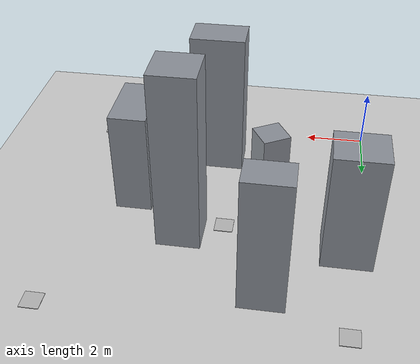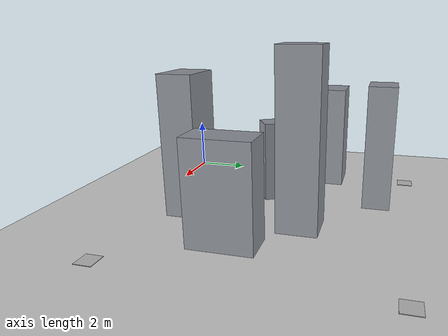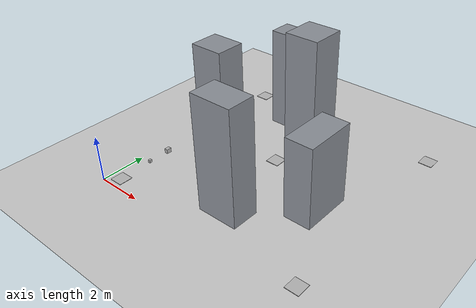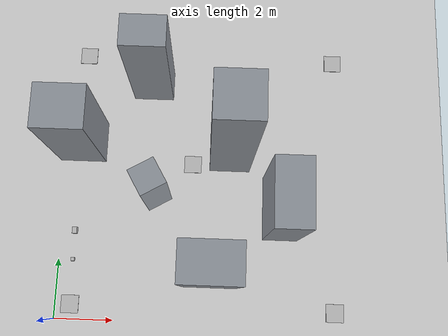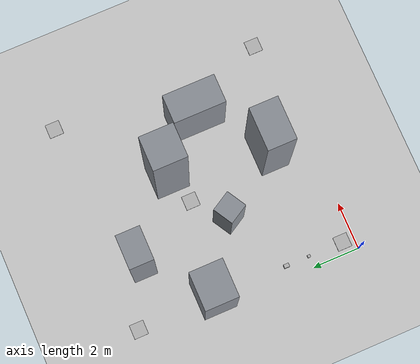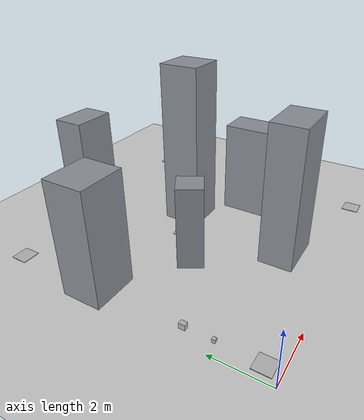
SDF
<sdf version="1.6">
 <world name="default">
  <include><uri>model://sun</uri></include>
  <include><uri>model://ground_plane</uri></include>
  <gravity>0 0 -9.8</gravity>
  <physics type="ode">
   <max_step_size>0.001</max_step_size>
   <real_time_factor>1</real_time_factor>
   <real_time_update_rate>1000</real_time_update_rate>
  </physics>
  <scene><ambient>0.4 0.4 0.4 1</ambient><background>0.7 0.7 0.7 1</background><shadows>1</shadows></scene>
  <include>
   <uri>model://landing_pad</uri>
   <name>landing_pad_0</name>
   <static>true</static>
   <pose>0.5 0.5 0 0 0 0</pose>
  </include>
  <include>
   <uri>model://landing_pad</uri>
   <name>landing_pad_1</name>
   <static>true</static>
   <pose>9.5 9.5 0 0 0 0</pose>
  </include>
  <include>
   <uri>model://landing_pad</uri>
   <name>landing_pad_2</name>
   <static>true</static>
   <pose>4.5 5.5 0 0 0 0</pose>
  </include>
  <include>
   <uri>model://landing_pad</uri>
   <name>landing_pad_3</name>
   <static>true</static>
   <pose>0.5 9.5 0 0 0 0</pose>
  </include>
  <include>
   <uri>model://landing_pad</uri>
   <name>landing_pad_4</name>
   <static>true</static>
   <pose>9.5 0.5 0 0 0 0</pose>
  </include>
  <include><uri>model://box_0</uri><name>box_0</name><pose>0.5 2 0.06 0 0 0</pose></include>
  <include><uri>model://box_4</uri><name>box_4</name><pose>0.5 3 0.06 0 0 0</pose></include>
  <model name="building_0">
   <static>true</static>
   <pose>0.6 6.2 2 0 0 0</pose>
   <link name="link">
    <collision name="collision"><geometry><box><size>1.6 1.4 4</size></box></geometry></collision>
    <visual name="visual">
     <geometry><box><size>1.6 1.4 4</size></box></geometry>
     <material><ambient>0.55 0.57 0.6 1</ambient><diffuse>0.55 0.57 0.6 1</diffuse></material>
    </visual>
   </link>
  </model>
  <model name="building_1">
   <static>true</static>
   <pose>5.8 6 3 0 0 0</pose>
   <link name="link">
    <collision name="collision"><geometry><box><size>1.4 1.4 6</size></box></geometry></collision>
    <visual name="visual">
     <geometry><box><size>1.4 1.4 6</size></box></geometry>
     <material><ambient>0.55 0.57 0.6 1</ambient><diffuse>0.55 0.57 0.6 1</diffuse></material>
    </visual>
   </link>
  </model>
  <model name="building_2">
   <static>true</static>
   <pose>3.2 4.4 1.5 0 0 0.523599</pose>
   <link name="link">
    <collision name="collision"><geometry><box><size>0.9 0.9 3</size></box></geometry></collision>
    <visual name="visual">
     <geometry><box><size>0.9 0.9 3</size></box></geometry>
     <material><ambient>0.55 0.57 0.6 1</ambient><diffuse>0.55 0.57 0.6 1</diffuse></material>
    </visual>
   </link>
  </model>
  <model name="building_3">
   <static>true</static>
   <pose>5.2 1.8 2.5 0 0 0</pose>
   <link name="link">
    <collision name="collision"><geometry><box><size>1.8 1.2 5</size></box></geometry></collision>
    <visual name="visual">
     <geometry><box><size>1.8 1.2 5</size></box></geometry>
     <material><ambient>0.55 0.57 0.6 1</ambient><diffuse>0.55 0.57 0.6 1</diffuse></material>
    </visual>
   </link>
  </model>
  <model name="building_4">
   <static>true</static>
   <pose>7.6 4 1.75 0 0 0</pose>
   <link name="link">
    <collision name="collision"><geometry><box><size>1.2 2.2 3.5</size></box></geometry></collision>
    <visual name="visual">
     <geometry><box><size>1.2 2.2 3.5</size></box></geometry>
     <material><ambient>0.55 0.57 0.6 1</ambient><diffuse>0.55 0.57 0.6 1</diffuse></material>
    </visual>
   </link>
  </model>
  <model name="building_5">
   <static>true</static>
   <pose>3 8.4 2.25 0 0 0</pose>
   <link name="link">
    <collision name="collision"><geometry><box><size>1.4 1 4.5</size></box></geometry></collision>
    <visual name="visual">
     <geometry><box><size>1.4 1 4.5</size></box></geometry>
     <material><ambient>0.55 0.57 0.6 1</ambient><diffuse>0.55 0.57 0.6 1</diffuse></material>
    </visual>
   </link>
  </model>
 </world>
</sdf>

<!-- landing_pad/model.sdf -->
<sdf version="1.5">
  <model name="landing_pad">
    <pose>5.0 0 0.01 0 0 0</pose>
    <static>true</static>
    <link name="link">
      <inertial>
        <mass>0.5</mass>
        <inertia>
          <ixx>0.001</ixx>
          <ixy>0</ixy>
          <ixz>0</ixz>
          <iyy>0.001</iyy>
          <iyz>0</iyz>
          <izz>0.001</izz>
        </inertia>
      </inertial>
      <collision name="collision">
        <geometry>
          <box>
            <size>0.6 0.6 0.02</size>
          </box>
        </geometry>
      </collision>
      <visual name="visual">
        <geometry>
          <box>
            <size>0.6 0.6 0.02</size>
          </box>
        </geometry>
        <material>
          <script>
            <uri>model://landing_pad/materials/scripts</uri>
	          <uri>model://landing_pad/materials/textures</uri>
            <name>Cube/landing_pad</name>
          </script>
        </material>
      </visual>
    </link>
  </model>
</sdf>

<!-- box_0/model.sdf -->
<sdf version='1.6'>
  <model name='box_0'>
    <link name="link">
      <visual name="visual">
            <geometry>
                <mesh>
                  <scale>1 1 1</scale>
                  <uri>model://box_0/meshes/box_0.dae</uri>
                </mesh>
            </geometry>
        </visual>
        <collision name="collision">
            <geometry>
                <mesh>
                    <uri>model://box_0/meshes/box_0.dae</uri>
                </mesh>
            </geometry>
        </collision>
        <inertial>
        <mass>0.01</mass> <!-- Mass in kg -->
        <inertia>
          <ixx>0.00002133</ixx>
          <ixy>0.0</ixy>
          <ixz>0.0</ixz>
          <iyy>0.00002133</iyy>
          <iyz>0.0</iyz>
          <izz>0.00002133</izz>
        </inertia>
      </inertial>

    </link>
  </model>
</sdf>

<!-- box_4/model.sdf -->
<sdf version='1.7'>
  <model name='box_4'>
    <link name='link'>
      <self_collide>0</self_collide>
      <inertial>
        <pose>0 0 0 0 -0 0</pose>
        <inertia>
          <ixx>0.00220983</ixx>
          <ixy>0</ixy>
          <ixz>0</ixz>
          <iyy>0.00128087</iyy>
          <iyz>0</iyz>
          <izz>0.00244903</izz>
        </inertia>
        <mass>0.1</mass>
      </inertial>
      <enable_wind>0</enable_wind>
      <kinematic>0</kinematic>
      <pose>0 0 0 0 -0 0</pose>
      <gravity>1</gravity>
      <visual name='visual1'>
        <cast_shadows>0</cast_shadows>
        <geometry>
          <mesh>
            <uri>model://boxes/box_4/meshes/box.dae</uri>
          </mesh>
        </geometry>
        <material>
          <shader type='pixel'>
            <normal_map>__default__</normal_map>
          </shader>
          <emissive>0 0 0 1</emissive>
        </material>
        <pose>0 0 -0.12 0 -0 0</pose>
        <transparency>0</transparency>
      </visual>
      <collision name='collision_0'>
        <laser_retro>0</laser_retro>
        <max_contacts>10</max_contacts>
        <pose>0 0 0 0 -0 0</pose>
        <geometry>
          <box>
            <size>0.16 0.22 0.24</size>
          </box>
        </geometry>
        <surface>
          <friction>
            <ode>
              <mu>1</mu>
              <mu2>1</mu2>
              <fdir1>0 0 0</fdir1>
              <slip1>0</slip1>
              <slip2>0</slip2>
            </ode>
            <torsional>
              <coefficient>1</coefficient>
              <patch_radius>0</patch_radius>
              <surface_radius>0</surface_radius>
              <use_patch_radius>1</use_patch_radius>
              <ode>
                <slip>0</slip>
              </ode>
            </torsional>
          </friction>
          <bounce>
            <restitution_coefficient>0</restitution_coefficient>
            <threshold>1e+06</threshold>
          </bounce>
          <contact>
            <collide_without_contact>0</collide_without_contact>
            <collide_without_contact_bitmask>1</collide_without_contact_bitmask>
            <collide_bitmask>1</collide_bitmask>
            <ode>
              <soft_cfm>0</soft_cfm>
              <soft_erp>0.2</soft_erp>
              <kp>1e+13</kp>
              <kd>1</kd>
              <max_vel>0.01</max_vel>
              <min_depth>0</min_depth>
            </ode>
            <bullet>
              <split_impulse>1</split_impulse>
              <split_impulse_penetration_threshold>-0.01</split_impulse_penetration_threshold>
              <soft_cfm>0</soft_cfm>
              <soft_erp>0.2</soft_erp>
              <kp>1e+13</kp>
              <kd>1</kd>
            </bullet>
          </contact>
        </surface>
      </collision>
    </link>
    <static>0</static>
    <allow_auto_disable>1</allow_auto_disable>
  </model>
</sdf>
